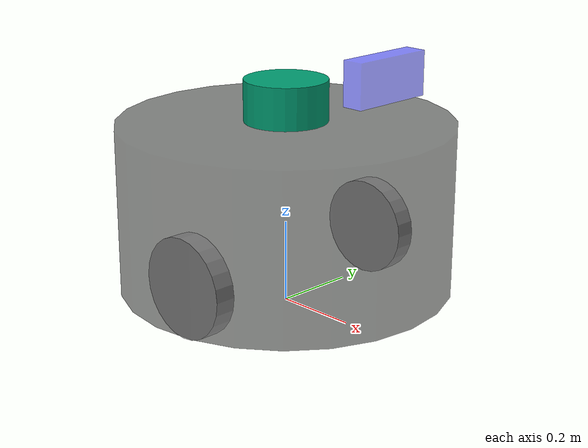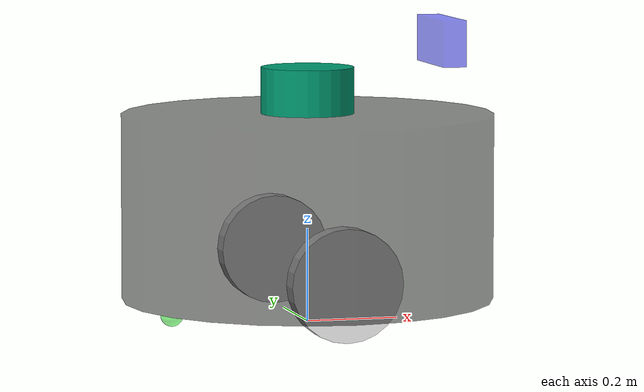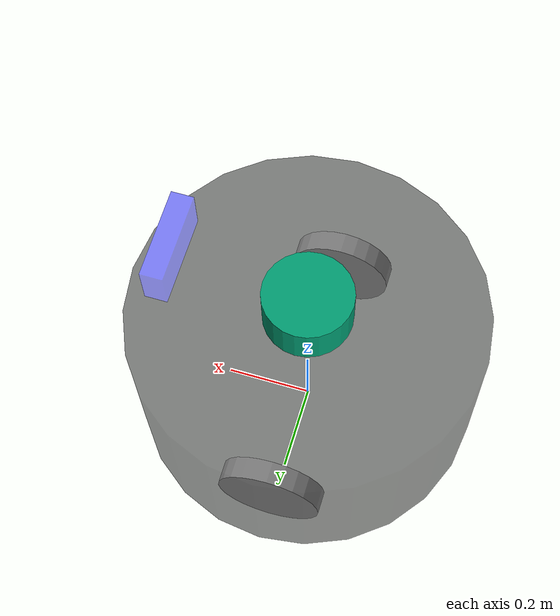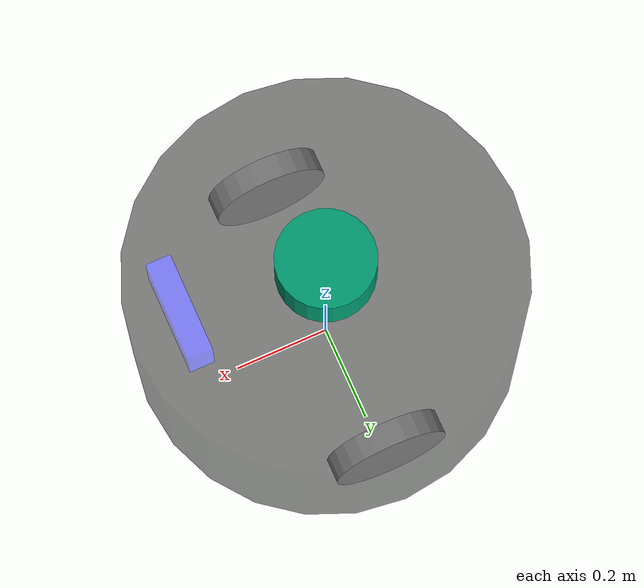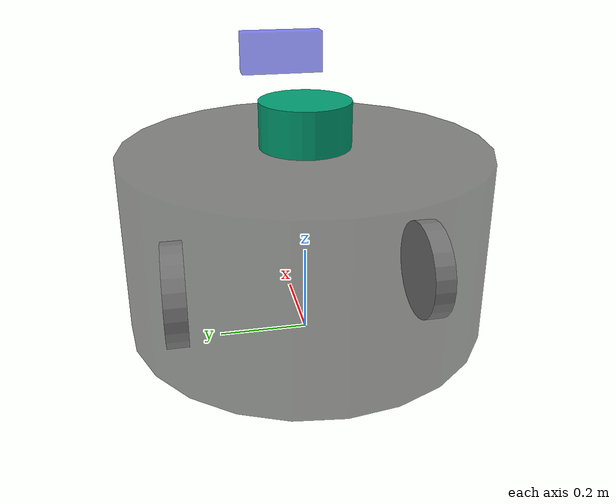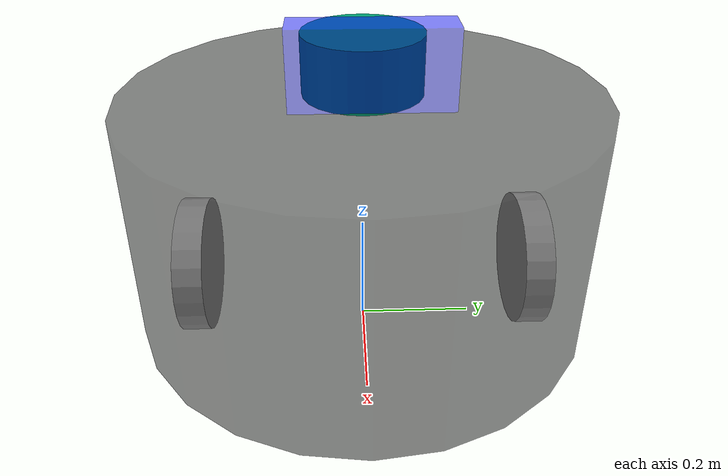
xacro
<robot xmlns:xacro="http://www.ros.org/wiki/xacro" name="tracer">
    <xacro:property name="chassis_radius" value="0.4"/>
    <xacro:property name="chassis_length" value="0.4"/>
    <xacro:property name="chassis_mass" value="10.0"/>

    <xacro:property name="wheel_radius" value="0.12"/>
    <xacro:property name="wheel_length" value="0.05"/>
    <xacro:property name="wheel_dist" value="0.6"/>
    <xacro:property name="wheel_mass" value="10.0"/>

    <xacro:property name="sphere_radius" value="0.025"/>
    <xacro:property name="sphere_mass" value="0.1"/>

    <xacro:property name="lidar_radius" value="0.1"/>
    <xacro:property name="lidar_length" value="0.1"/>
    <xacro:property name="lidar_mass" value="0.1"/>

    <xacro:property name="camera_size_x" value="0.05"/>
    <xacro:property name="camera_size_y" value="0.2"/>
    <xacro:property name="camera_size_z" value="0.1"/>
    <xacro:property name="camera_mass" value="0.1"/>

    <xacro:property name="imu_l" value="0.05"/>
    <xacro:property name="imu_w" value="0.05"/>
    <xacro:property name="imu_h" value="0.01"/>
    <xacro:property name="imu_m" value="0.5"/>

    <link name="base_link">
        <visual>
            <geometry>
                <sphere radius="0.0001"/>
            </geometry>
        </visual>
    </link>
    <xacro:include filename="$(find robot_description)/xacro/inertia.xacro"/>
    <xacro:include filename="$(find robot_description)/xacro/tracer/chassis.xacro"/>
    <xacro:include filename="$(find robot_description)/xacro/tracer/lidar.xacro"/>
    <xacro:include filename="$(find robot_description)/xacro/tracer/camera.xacro"/>
    <xacro:include filename="$(find robot_description)/xacro/tracer/spheres.xacro"/>
    <xacro:include filename="$(find robot_description)/xacro/tracer/wheels.xacro"/>
    <xacro:include filename="$(find robot_description)/xacro/tracer/imu.xacro"/>

</robot>

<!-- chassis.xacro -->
<robot xmlns:xacro="http://www.ros.org/wiki/xacro" name="tracer">
    <link name="chassis" >
        <visual>
            <geometry>
                <cylinder radius="${chassis_radius}" length="${chassis_length}"/>
            </geometry>
            <material name="chassis_color">
                <color rgba="0.0 0.0 0.0 0.5"/>
            </material>
        </visual>
        <!-- 碰撞参数 -->
        <collision>
            <geometry>
                <cylinder radius="${chassis_radius}" length="${chassis_length}"/>
            </geometry>
        </collision>
        <!-- 惯性矩阵 -->
        <xacro:cylinder_inertial_matrix m="${chassis_mass}" r="${chassis_radius}" h="${chassis_length}"/>
    </link>
    <joint name="chassis2base" type="fixed">
        <parent link="base_link"/>
        <child link="chassis"/>
        <origin xyz="0.0 0.0 ${chassis_radius/2+sphere_radius*2}" rpy="0.0 0.0 0.0"/>
    </joint>
    <!-- gazebo颜色设置 -->
    <gazebo reference="chassis">
        <material>Gazebo/Black</material>
    </gazebo>
</robot>

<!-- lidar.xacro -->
<robot xmlns:xacro="http://www.ros.org/wiki/xacro" name="tracer">
    <link name="lidar">
        <visual>
            <geometry>
                <cylinder radius="${lidar_radius}" length="${lidar_length}"/>
            </geometry>
        </visual>
        <xacro:cylinder_inertial_matrix m="${lidar_mass}" r="${lidar_radius}" h="${lidar_length}"/>
        <transmission name="lidar2chassis_trans">
            <type>transmission_interface/SimpleTransmission</type>
            <joint name="lidar2chassis">
                <hardwareInterface>PositionJointInterface</hardwareInterface>
            </joint>
            <actuator name="lidar2chassis_motor">
                <mechanicalReduction>1.0</mechanicalReduction>
            </actuator>
        </transmission>
    </link>
    <joint name="lidar2chassis" type="fixed">
        <parent link="chassis"/>
        <child link="lidar"/>
        <origin xyz="0.0 0.0 ${chassis_length/2+lidar_length/2}" rpy="0.0 0.0 0.0"/>
    </joint>
    <gazebo reference="lidar">
        <sensor type="ray" name="rplidar">
            <pose>0 0 0 0 0 0</pose>
            <visualize>true</visualize>
            <update_rate>20.0</update_rate>
            <ray>
                <scan>
                    <horizontal>
                        <samples>720</samples>
                        <resolution>1</resolution>
                        <min_angle>-3</min_angle>
                        <max_angle>3</max_angle>
                    </horizontal>
                </scan>
                <range>
                    <min>0.10</min>
                    <max>30.0</max>
                    <resolution>0.01</resolution>
                </range>
                <noise>
                    <type>gaussian</type>
                    <mean>0.0</mean>
                    <stddev>0.01</stddev>
                </noise>
            </ray>
            <plugin name="gazebo_rplidar" filename="libgazebo_ros_laser.so">
                <topicName>/scan</topicName>
                <frameName>lidar</frameName>
            </plugin>
        </sensor>
    </gazebo>
</robot>

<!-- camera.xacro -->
<robot xmlns:xacro="http://www.ros.org/wiki/xacro" name="tracer">
    <link name="camera">
        <visual>
            <geometry>
                <box size="${camera_size_x} ${camera_size_y} ${camera_size_z}"/>
            </geometry>
            <material name="camera_color">
                <color rgba="0.0 0.0 1.0 0.5"/>
            </material>
        </visual>
        <collision>
            <geometry>
                <box size="${camera_size_x} ${camera_size_y} ${camera_size_z}"/>
            </geometry>
        </collision>
        <xacro:box_inertial_matrix m="${camera_mass}" l="${camera_size_x}" w="${camera_size_y}" h="${camera_size_z}"/>
    </link>
    <joint name="camera2chassis" type="fixed">
        <parent link="chassis"/>
        <child link="camera"/>
        <origin xyz="0.3 0.0 ${chassis_length/2+camera_size_z/2+lidar_length}" rpy="0.0 0.0 0.0"/>
    </joint>
    <gazebo reference="camera">
        <!-- 类型设置为 camara -->
        <sensor type="camera" name="camera_node">
            <update_rate>20.0</update_rate> <!-- 更新频率 -->
            <!-- 摄像头基本信息设置 -->
            <camera name="head">
                <horizontal_fov>${60.0*pi/180.0}</horizontal_fov>
                <image>
                    <width>1280</width>
                    <height>720</height>
                    <format>R8G8B8</format>
                </image>
                <clip>
                    <near>0.02</near>
                    <far>300</far>
                </clip>
                <noise>
                    <type>gaussian</type>
                    <mean>0.0</mean>
                    <stddev>0.007</stddev>
                </noise>
            </camera>
            <!-- 核心插件 -->
            <plugin name="gazebo_camera" filename="libgazebo_ros_camera.so">
                <alwaysOn>true</alwaysOn>
                <updateRate>0.0</updateRate>
                <cameraName>/camera</cameraName>
                <imageTopicName>image_raw</imageTopicName>
                <cameraInfoTopicName>camera_info</cameraInfoTopicName>
                <frameName>camera</frameName>
                <hackBaseline>0.07</hackBaseline>
                <distortionK1>0.0</distortionK1>
                <distortionK2>0.0</distortionK2>
                <distortionK3>0.0</distortionK3>
                <distortionT1>0.0</distortionT1>
                <distortionT2>0.0</distortionT2>
            </plugin>
        </sensor>
    </gazebo>

</robot>

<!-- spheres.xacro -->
<robot xmlns:xacro="http://www.ros.org/wiki/xacro" name="tracer">
    <xacro:macro name="sphere_func" params="sphere_name flag">
        <link name="${sphere_name}_wheel">
            <visual>
                <geometry>
                    <sphere radius="${sphere_radius}"/>
                </geometry>
                <material name="sphere_color">
                    <color rgba="0.0 1.0 0.0 0.5"/>
                </material>
            </visual>
            <collision>
                <geometry>
                    <sphere radius="${sphere_radius}"/>
                </geometry>
            </collision>
            <xacro:sphere_inertial_matrix m="${sphere_mass}" r="${sphere_radius}"/>
        </link>
        <joint name="${sphere_name}2chassis" type="continuous">
            <parent link="chassis"/>
            <child link="${sphere_name}_wheel"/>
            <origin xyz="${flag*0.3} 0.0 ${(sphere_radius+chassis_length/2)*-1}" rpy="0.0 0.0 0.0"/>
            <axis xyz="1 1 1" />
        </joint>
        <transmission name="${sphere_name}2chassis_trans">
            <type>transmission_interface/SimpleTransmission</type>
            <joint name="${sphere_name}2chassis">
                <hardwareInterface>EffortJointInterface</hardwareInterface>
            </joint>
            <actuator name="${sphere_name}2chassis_motor">
                <mechanicalReduction>1.0</mechanicalReduction>
                <hardwareInterface>EffortJointInterface</hardwareInterface>
            </actuator>
        </transmission>
    </xacro:macro>
    <xacro:sphere_func sphere_name="front" flag = "1"/>
    <xacro:sphere_func sphere_name="behind" flag = "-1"/>
</robot>

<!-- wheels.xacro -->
<robot xmlns:xacro="http://www.ros.org/wiki/xacro" name="tracer">
    <xacro:macro name="wheel_func" params="wheel_name flag">
        <link name="${wheel_name}_wheel">
            <visual>
                <geometry>
                    <cylinder radius="${wheel_radius}" length="${wheel_length}"/>
                </geometry>
                <material name="wheel_color">
                    <color rgba="1.0 1.0 1.0 1.0"/>
                </material>
                <origin xyz="0.0 0.0 0.0" rpy="${pi/2} 0.0 0.0"/>
            </visual>
            <collision>
                <geometry>
                    <cylinder radius="${wheel_radius}" length="${wheel_length}"/>
                </geometry>
                <origin xyz="0.0 0.0 0.0" rpy="${pi/2} 0.0 0.0"/>
            </collision>
            <xacro:cylinder_inertial_matrix m="${wheel_mass}" r="${wheel_radius}" h="${wheel_length}"/>
        </link>
        <joint name="${wheel_name}2chassis" type="continuous">
            <parent link="chassis"/>
            <child link="${wheel_name}_wheel"/>
            <axis xyz="0 1 0"/>
            <origin xyz="0 ${wheel_dist/2*flag} ${(sphere_radius*2+chassis_length/2-wheel_radius)*-1}" rpy="0 0 0"/>
        </joint>
        <transmission name="${wheel_name}2chassis_trans">
            <type>transmission_interface/SimpleTransmission</type>
            <joint name="${wheel_name}2chassis">
                <hardwareInterface>hardware_interface/EffortJointInterface</hardwareInterface>
            </joint>
            <actuator name="${wheel_name}2chassis_motor">
                <mechanicalReduction>1.0</mechanicalReduction>
                <hardwareInterface>hardware_interface/EffortJointInterface</hardwareInterface>
            </actuator>
        </transmission>
    </xacro:macro>
    <xacro:wheel_func wheel_name="left" flag = "1"/>
    <xacro:wheel_func wheel_name="right" flag = "-1"/>

    <gazebo>
        <plugin name="differential_drive_controller" filename="libgazebo_ros_diff_drive.so">
            <rosDebugLevel>Debug</rosDebugLevel>
            <publishWheelTF>false</publishWheelTF>
            <robotNamespace>/</robotNamespace>
            <publishTf>1</publishTf>
            <publishWheelJointState>false</publishWheelJointState>
            <alwaysOn>true</alwaysOn>
            <updateRate>100.0</updateRate>
            <legacyMode>true</legacyMode>
            <leftJoint>left2chassis</leftJoint> <!-- 左轮 -->
            <rightJoint>right2chassis</rightJoint> <!-- 右轮 -->
            <wheelSeparation>${0.6+wheel_length}</wheelSeparation> <!-- 车轮间距 -->
            <wheelDiameter>${wheel_radius*2}</wheelDiameter> <!-- 车轮直径 -->
            <broadcastTF>1</broadcastTF>
            <wheelTorque>30</wheelTorque>
            <wheelAcceleration>1.8</wheelAcceleration>
            <commandTopic>/cmd_vel</commandTopic> <!-- 运动控制话题 -->
            <odometryFrame>/odom</odometryFrame>
            <odometryTopic>/odom</odometryTopic> <!-- 里程计话题 -->
            <robotBaseFrame>/base_link</robotBaseFrame> <!-- 根坐标系 -->
        </plugin>
    </gazebo>
</robot>

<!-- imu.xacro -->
<robot xmlns:xacro="http://www.ros.org/wiki/xacro" name="racecar">
    <link name="imu">
        <visual>
            <geometry>
                <box size="${imu_l} ${imu_w} ${imu_h}"/>
            </geometry>
        </visual>
        <collision>
            <geometry>
                <box size="${imu_l} ${imu_w} ${imu_h}"/>
            </geometry>
        </collision>
        <xacro:box_inertial_matrix m="${imu_m}" l="${imu_l}" w="${imu_w}" h="${imu_h}"/>
    </link>
    <joint name="imu2chassis" type="fixed">
        <parent link="chassis"/>
        <child link="imu"/>
        <origin xyz="0.0 0.0 ${chassis_length/2+imu_h/2}" rpy="0.0 0.0 0.0"/>
    </joint>
    <gazebo reference="imu">
        <material>Gazebo/Orange</material>
        <gravity>true</gravity>
        <sensor name="imu_sensor" type="imu">
            <always_on>true</always_on>
            <update_rate>100</update_rate>
            <visualize>true</visualize>
            <topic>__default_topic__</topic>
            <plugin filename="libgazebo_ros_imu_sensor.so" name="imu_plugin">
                <topicName>imu</topicName>
                <bodyName>imu</bodyName>
                <updateRateHZ>100.0</updateRateHZ>
                <gaussianNoise>0.0</gaussianNoise>
                <xyzOffset>0 0 0</xyzOffset>
                <rpyOffset>0 0 0</rpyOffset>
                <frameName>imu</frameName>
            </plugin>
            <pose>0 0 0 0 0 0</pose>
        </sensor>
</gazebo>
</robot>
